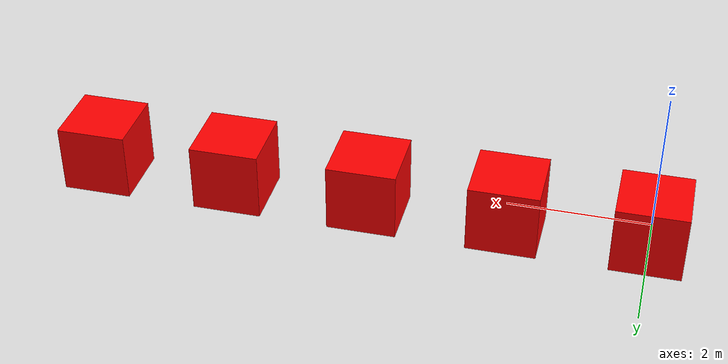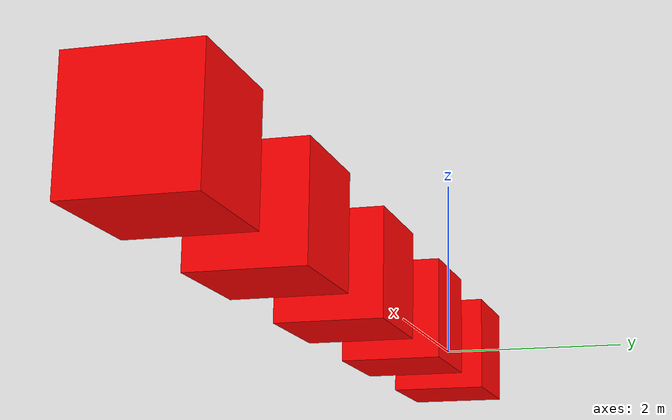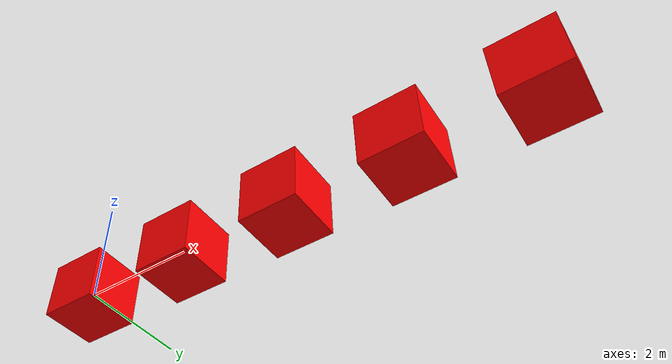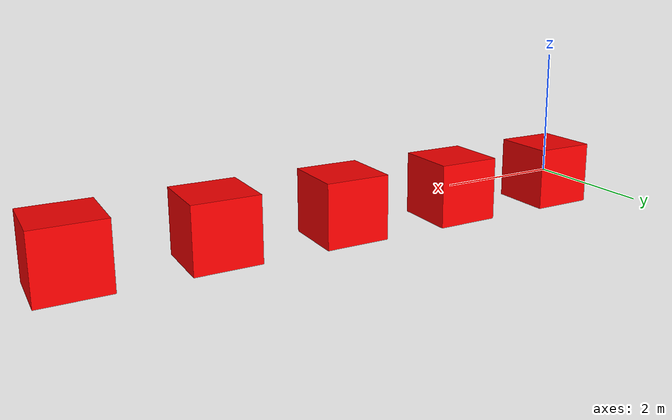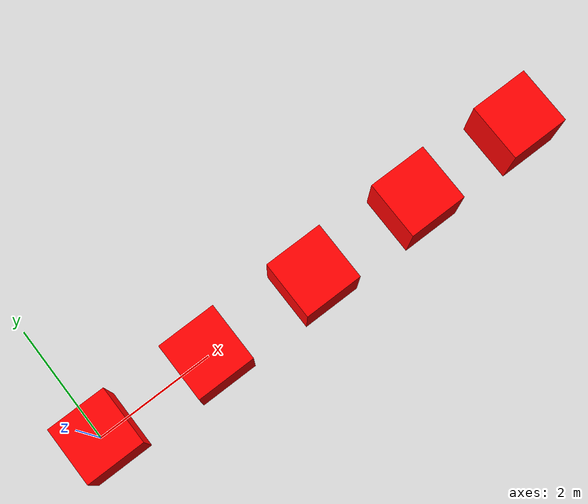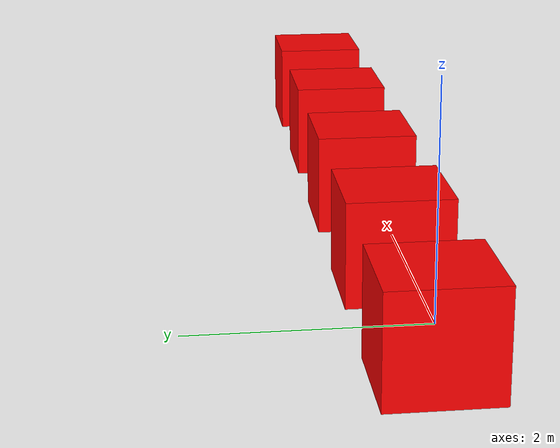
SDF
<?xml version="1.0" ?>
<sdf version="1.6">
  <model name="nested_fire_generator">
    <pose>0 0 0 0 0 0</pose>
    <static>true</static>
    <include>
      <uri>model://fire_generator</uri>
      <pose>0 0 0 0 0 0</pose>
    </include>
    <include>
      <uri>model://fire_generator</uri>
      <pose>2 0 0 0 0 0</pose>
    </include>
    <include>
      <uri>model://fire_generator</uri>
      <pose>4 0 0 0 0 0</pose>
    </include>
    <include>
      <uri>model://fire_generator</uri>
      <pose>6 0 0 0 0 0</pose>
    </include>
    <include>
      <uri>model://fire_generator</uri>
      <pose>8 0 0 0 0 0</pose>
    </include>
  </model>
</sdf>

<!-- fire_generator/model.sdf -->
<sdf version="1.6">
  <model name="fire_generator">
    <pose>0 0 0 0 -1.5707 0</pose>
    <static>true</static>
    <link name="fire_link">
      <particle_emitter name="emitter" type="box">
        <emitting>true</emitting>
        <size>1 1 1 </size>
        <particle_size>0.3 0.3 0.3</particle_size>
        <lifetime>5</lifetime>
        <min_velocity>0.1</min_velocity>
        <max_velocity>0.2</max_velocity>
        <scale_rate>0.5</scale_rate>
        <rate>50</rate>
        <material>
          <diffuse>0.7 0.7 0.7</diffuse>
          <specular>1.0 1.0 1.0</specular>
          <pbr>
            <metal>
              <albedo_map>materials/textures/fire.png</albedo_map>
            </metal>
          </pbr>
        </material>
        <color_range_image>materials/textures/firecolors.png</color_range_image>
      </particle_emitter>
    </link>
    <link name="thermal_link">
    <visual name="fire_visual">
      <geometry>
        <box>
          <size>1 1 1 </size>
        </box>
      </geometry>
      <material>
        <ambient>1 0 0 1</ambient>
        <diffuse>1 0 0 1</diffuse>
        <specular>1 0 0 1</specular>
      </material>
      <plugin filename="ignition-gazebo-thermal-system" name="ignition::gazebo::systems::Thermal">
          <heat_signature>materials/textures/fire_thermal.png</heat_signature>
          <max_temp>1200</max_temp>
        </plugin>
    </visual>
  </link>
    <plugin
      filename="libignition-gazebo-particle-emitter-system.so"
      name="ignition::gazebo::systems::ParticleEmitter">
    </plugin>

  </model>
</sdf>
